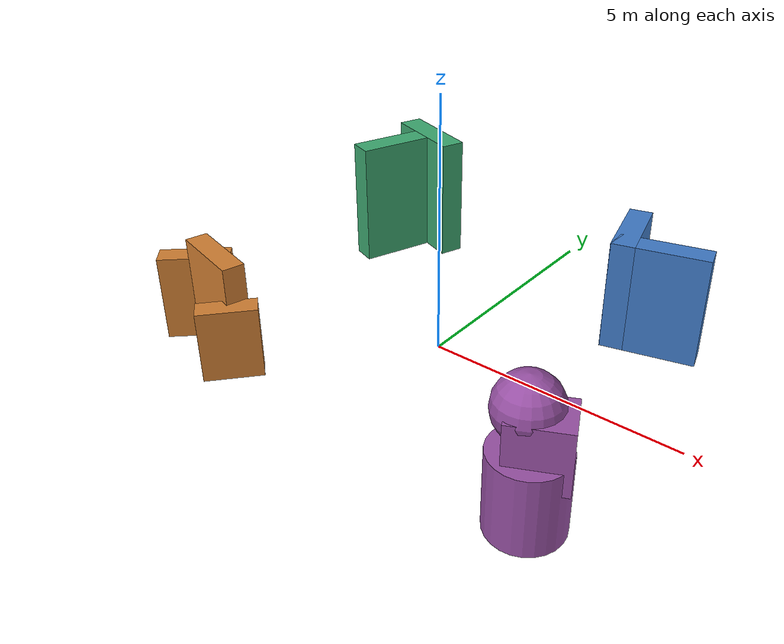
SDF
<?xml version="1.0"?>
<sdf version="1.6">
  <model name="p450_irregular_obstacles">
    <static>true</static>

    <!-- 东北侧：L 形高障碍物。 -->
    <link name="l_shape">
      <pose>3.2 2.4 0 0 0 0.25</pose>
      <collision name="long_collision">
        <pose>0 0 1.1 0 0 0</pose>
        <geometry><box><size>1.8 0.45 2.2</size></box></geometry>
      </collision>
      <collision name="short_collision">
        <pose>-0.675 0.575 1.1 0 0 0</pose>
        <geometry><box><size>0.45 1.6 2.2</size></box></geometry>
      </collision>
      <visual name="long_visual">
        <pose>0 0 1.1 0 0 0</pose>
        <geometry><box><size>1.8 0.45 2.2</size></box></geometry>
        <material>
          <ambient>0.20 0.38 0.62 1</ambient>
          <diffuse>0.25 0.48 0.78 1</diffuse>
        </material>
      </visual>
      <visual name="short_visual">
        <pose>-0.675 0.575 1.1 0 0 0</pose>
        <geometry><box><size>0.45 1.6 2.2</size></box></geometry>
        <material>
          <ambient>0.20 0.38 0.62 1</ambient>
          <diffuse>0.25 0.48 0.78 1</diffuse>
        </material>
      </visual>
    </link>

    <!-- 西北侧：旋转的 T 形障碍物。 -->
    <link name="t_shape">
      <pose>-3.2 3.1 0 0 0 -0.35</pose>
      <collision name="stem_collision">
        <pose>0 -0.35 1.3 0 0 0</pose>
        <geometry><box><size>0.5 1.8 2.6</size></box></geometry>
      </collision>
      <collision name="cap_collision">
        <pose>0 0.55 1.3 0 0 0</pose>
        <geometry><box><size>1.8 0.5 2.6</size></box></geometry>
      </collision>
      <visual name="stem_visual">
        <pose>0 -0.35 1.3 0 0 0</pose>
        <geometry><box><size>0.5 1.8 2.6</size></box></geometry>
        <material>
          <ambient>0.20 0.52 0.36 1</ambient>
          <diffuse>0.24 0.66 0.44 1</diffuse>
        </material>
      </visual>
      <visual name="cap_visual">
        <pose>0 0.55 1.3 0 0 0</pose>
        <geometry><box><size>1.8 0.5 2.6</size></box></geometry>
        <material>
          <ambient>0.20 0.52 0.36 1</ambient>
          <diffuse>0.24 0.66 0.44 1</diffuse>
        </material>
      </visual>
    </link>

    <!-- 西南侧：三段高度不同的折线障碍物。 -->
    <link name="zigzag_shape">
      <pose>-3.4 -2.6 0 0 0 0.2</pose>
      <collision name="segment_a_collision">
        <pose>-0.55 0.35 0.85 0 0 0.55</pose>
        <geometry><box><size>1.35 0.42 1.7</size></box></geometry>
      </collision>
      <collision name="segment_b_collision">
        <pose>0.25 0 1.05 0 0 -0.45</pose>
        <geometry><box><size>1.5 0.42 2.1</size></box></geometry>
      </collision>
      <collision name="segment_c_collision">
        <pose>0.85 -0.55 0.7 0 0 0.65</pose>
        <geometry><box><size>1.1 0.42 1.4</size></box></geometry>
      </collision>
      <visual name="segment_a_visual">
        <pose>-0.55 0.35 0.85 0 0 0.55</pose>
        <geometry><box><size>1.35 0.42 1.7</size></box></geometry>
        <material>
          <ambient>0.62 0.38 0.16 1</ambient>
          <diffuse>0.82 0.50 0.20 1</diffuse>
        </material>
      </visual>
      <visual name="segment_b_visual">
        <pose>0.25 0 1.05 0 0 -0.45</pose>
        <geometry><box><size>1.5 0.42 2.1</size></box></geometry>
        <material>
          <ambient>0.62 0.38 0.16 1</ambient>
          <diffuse>0.82 0.50 0.20 1</diffuse>
        </material>
      </visual>
      <visual name="segment_c_visual">
        <pose>0.85 -0.55 0.7 0 0 0.65</pose>
        <geometry><box><size>1.1 0.42 1.4</size></box></geometry>
        <material>
          <ambient>0.62 0.38 0.16 1</ambient>
          <diffuse>0.82 0.50 0.20 1</diffuse>
        </material>
      </visual>
    </link>

    <!-- 东南侧：圆柱、斜方体和球体叠成的不规则障碍物。 -->
    <link name="rock_shape">
      <pose>3.8 -2.9 0 0 0 0</pose>
      <collision name="base_collision">
        <pose>0 0 0.7 0 0 0</pose>
        <geometry><cylinder><radius>0.65</radius><length>1.4</length></cylinder></geometry>
      </collision>
      <collision name="middle_collision">
        <pose>0.12 0.05 1.55 0 0 0.45</pose>
        <geometry><box><size>1.0 0.8 1.1</size></box></geometry>
      </collision>
      <collision name="top_collision">
        <pose>-0.12 0.08 2.05 0 0 0</pose>
        <geometry><sphere><radius>0.55</radius></sphere></geometry>
      </collision>
      <visual name="base_visual">
        <pose>0 0 0.7 0 0 0</pose>
        <geometry><cylinder><radius>0.65</radius><length>1.4</length></cylinder></geometry>
        <material>
          <ambient>0.45 0.24 0.48 1</ambient>
          <diffuse>0.60 0.32 0.65 1</diffuse>
        </material>
      </visual>
      <visual name="middle_visual">
        <pose>0.12 0.05 1.55 0 0 0.45</pose>
        <geometry><box><size>1.0 0.8 1.1</size></box></geometry>
        <material>
          <ambient>0.45 0.24 0.48 1</ambient>
          <diffuse>0.60 0.32 0.65 1</diffuse>
        </material>
      </visual>
      <visual name="top_visual">
        <pose>-0.12 0.08 2.05 0 0 0</pose>
        <geometry><sphere><radius>0.55</radius></sphere></geometry>
        <material>
          <ambient>0.45 0.24 0.48 1</ambient>
          <diffuse>0.60 0.32 0.65 1</diffuse>
        </material>
      </visual>
    </link>
  </model>
</sdf>
